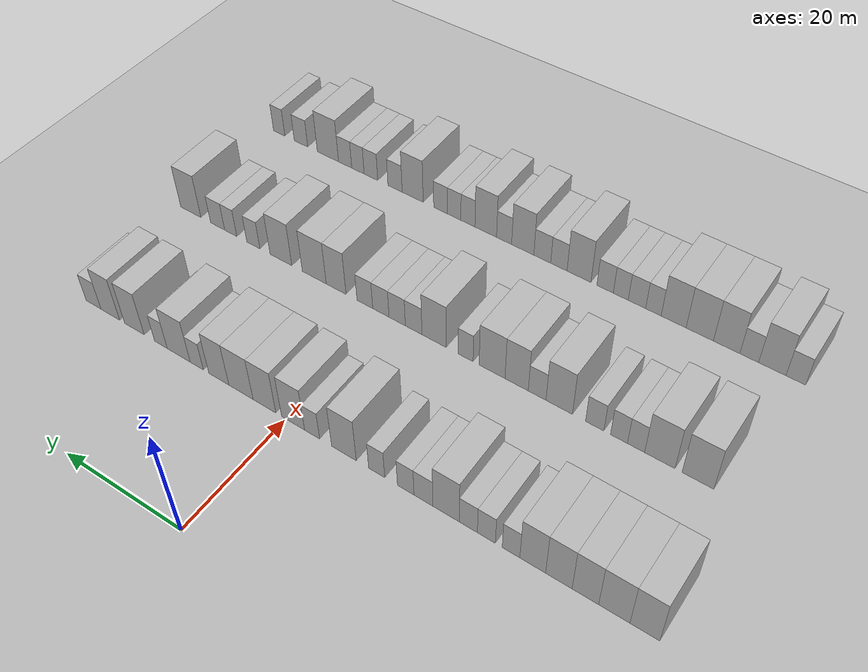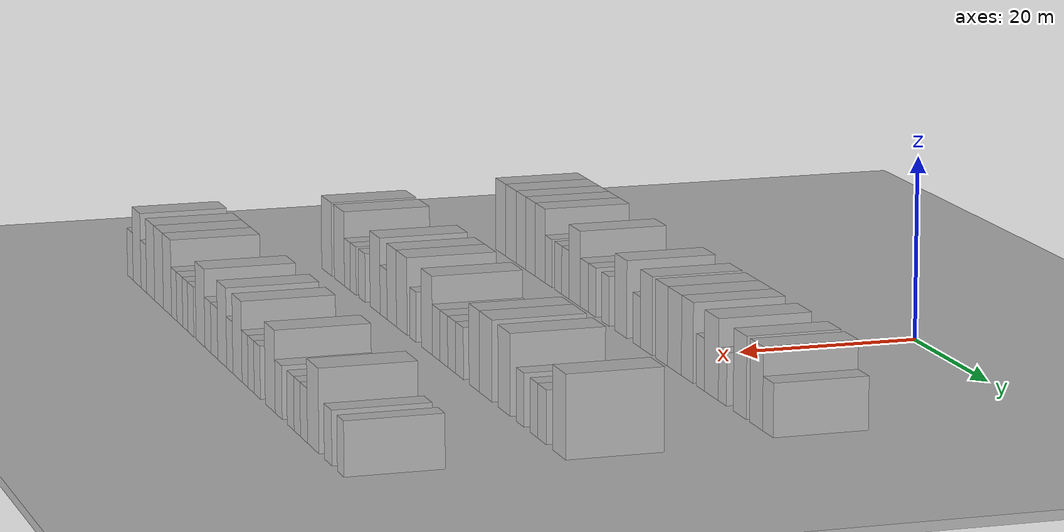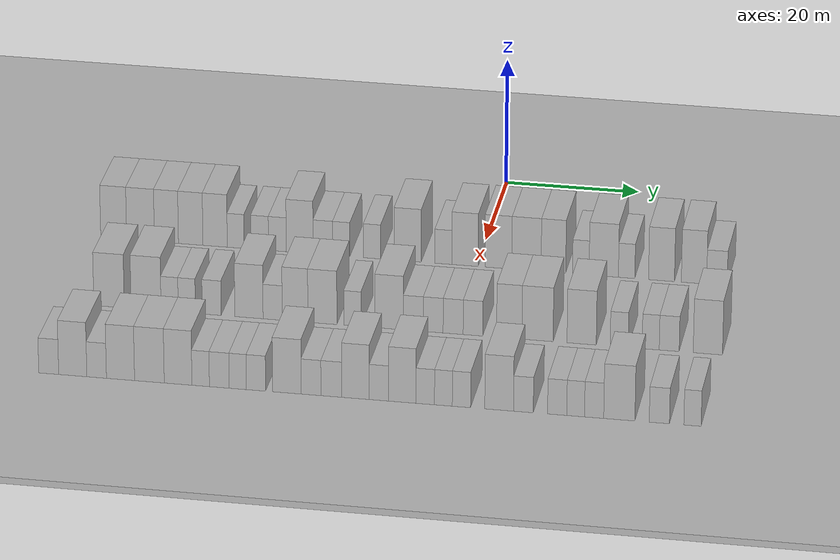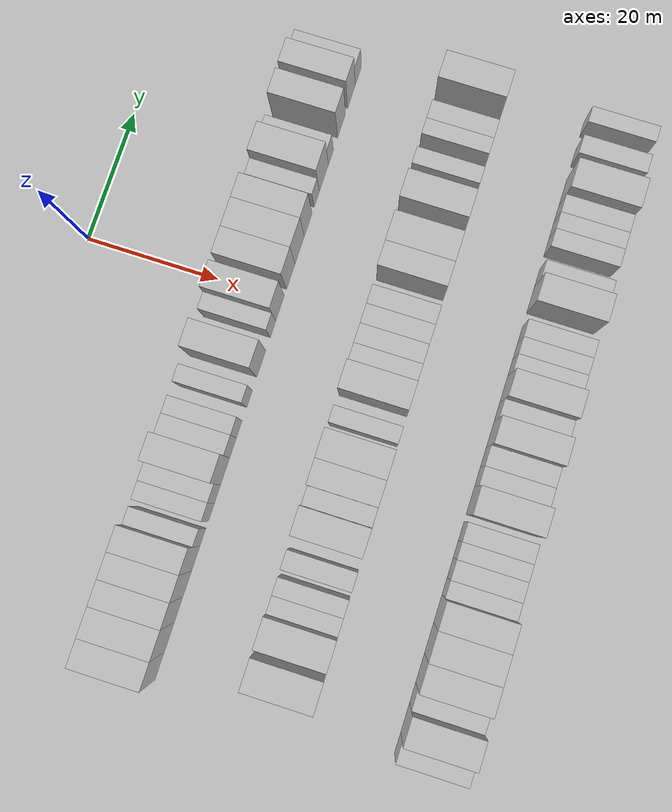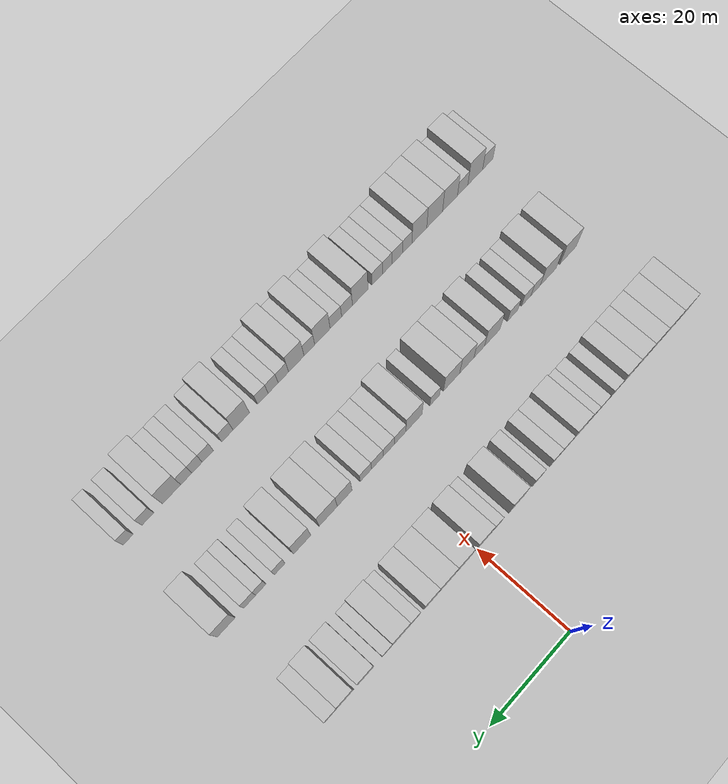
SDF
<sdf version="1.6">
 <world name="default">
  <include><name>ground_plane_1</name><uri>model://HANNAS_ground_plane</uri></include>
  <include>
   <name>ground_plane_2</name>
   <uri>model://HANNAS_ground_plane</uri>
   <pose>100 0 0  0 0 0</pose>
  </include>
  <model name="building_52">
   <static>1</static>
   <pose>25.0000 -53.8270 0 0.000000 0.000000 0.000000</pose>
   <link name="link">
    <pose>0 0 4.50 0 0 0</pose>
    <collision name="collision"><geometry><box><size>10.0000 3.8983 9.0000</size></box></geometry></collision>
    <visual name="visual">
     <cast_shadows>0</cast_shadows>
     <geometry><box><size>10.0000 3.8983 9.0000</size></box></geometry>
     <material>
      <script>
       <uri>model://HANNAS_wall/materials/scripts</uri>
       <uri>model://HANNAS_wall/materials/textures</uri>
       <name>vrc/HANNAS_wall</name>
      </script>
     </material>
    </visual>
   </link>
  </model>
  <model name="building_53">
   <static>1</static>
   <pose>25.0000 -49.7944 0 0.000000 0.000000 0.000000</pose>
   <link name="link">
    <pose>0 0 4.50 0 0 0</pose>
    <collision name="collision"><geometry><box><size>10.0000 4.1670 9.0000</size></box></geometry></collision>
    <visual name="visual">
     <cast_shadows>0</cast_shadows>
     <geometry><box><size>10.0000 4.1670 9.0000</size></box></geometry>
     <material>
      <script>
       <uri>model://HANNAS_wall/materials/scripts</uri>
       <uri>model://HANNAS_wall/materials/textures</uri>
       <name>vrc/HANNAS_wall</name>
      </script>
     </material>
    </visual>
   </link>
  </model>
  <model name="building_54">
   <static>1</static>
   <pose>25.0000 -45.9077 0 0.000000 0.000000 0.000000</pose>
   <link name="link">
    <pose>0 0 4.50 0 0 0</pose>
    <collision name="collision"><geometry><box><size>10.0000 3.6064 9.0000</size></box></geometry></collision>
    <visual name="visual">
     <cast_shadows>0</cast_shadows>
     <geometry><box><size>10.0000 3.6064 9.0000</size></box></geometry>
     <material>
      <script>
       <uri>model://HANNAS_wall/materials/scripts</uri>
       <uri>model://HANNAS_wall/materials/textures</uri>
       <name>vrc/HANNAS_wall</name>
      </script>
     </material>
    </visual>
   </link>
  </model>
  <model name="building_55">
   <static>1</static>
   <pose>25.0000 -42.2686 0 0.000000 0.000000 0.000000</pose>
   <link name="link">
    <pose>0 0 4.50 0 0 0</pose>
    <collision name="collision"><geometry><box><size>10.0000 3.6719 9.0000</size></box></geometry></collision>
    <visual name="visual">
     <cast_shadows>0</cast_shadows>
     <geometry><box><size>10.0000 3.6719 9.0000</size></box></geometry>
     <material>
      <script>
       <uri>model://HANNAS_wall/materials/scripts</uri>
       <uri>model://HANNAS_wall/materials/textures</uri>
       <name>vrc/HANNAS_wall</name>
      </script>
     </material>
    </visual>
   </link>
  </model>
  <model name="building_56">
   <static>1</static>
   <pose>25.0000 -38.6117 0 0.000000 0.000000 0.000000</pose>
   <link name="link">
    <pose>0 0 4.50 0 0 0</pose>
    <collision name="collision"><geometry><box><size>10.0000 3.6418 9.0000</size></box></geometry></collision>
    <visual name="visual">
     <cast_shadows>0</cast_shadows>
     <geometry><box><size>10.0000 3.6418 9.0000</size></box></geometry>
     <material>
      <script>
       <uri>model://HANNAS_wall/materials/scripts</uri>
       <uri>model://HANNAS_wall/materials/textures</uri>
       <name>vrc/HANNAS_wall</name>
      </script>
     </material>
    </visual>
   </link>
  </model>
  <model name="building_57">
   <static>1</static>
   <pose>25.0000 -35.5270 0 0.000000 0.000000 0.000000</pose>
   <link name="link">
    <pose>0 0 3.00 0 0 0</pose>
    <collision name="collision"><geometry><box><size>10.0000 2.5277 6.0000</size></box></geometry></collision>
    <visual name="visual">
     <cast_shadows>0</cast_shadows>
     <geometry><box><size>10.0000 2.5277 6.0000</size></box></geometry>
     <material>
      <script>
       <uri>model://HANNAS_wall/materials/scripts</uri>
       <uri>model://HANNAS_wall/materials/textures</uri>
       <name>vrc/HANNAS_wall</name>
      </script>
     </material>
    </visual>
   </link>
  </model>
  <model name="building_58">
   <static>1</static>
   <pose>25.0000 -31.9532 0 0.000000 0.000000 0.000000</pose>
   <link name="link">
    <pose>0 0 3.00 0 0 0</pose>
    <collision name="collision"><geometry><box><size>10.0000 2.6199 6.0000</size></box></geometry></collision>
    <visual name="visual">
     <cast_shadows>0</cast_shadows>
     <geometry><box><size>10.0000 2.6199 6.0000</size></box></geometry>
     <material>
      <script>
       <uri>model://HANNAS_wall/materials/scripts</uri>
       <uri>model://HANNAS_wall/materials/textures</uri>
       <name>vrc/HANNAS_wall</name>
      </script>
     </material>
    </visual>
   </link>
  </model>
  <model name="building_59">
   <static>1</static>
   <pose>25.0000 -29.3172 0 0.000000 0.000000 0.000000</pose>
   <link name="link">
    <pose>0 0 3.00 0 0 0</pose>
    <collision name="collision"><geometry><box><size>10.0000 2.6520 6.0000</size></box></geometry></collision>
    <visual name="visual">
     <cast_shadows>0</cast_shadows>
     <geometry><box><size>10.0000 2.6520 6.0000</size></box></geometry>
     <material>
      <script>
       <uri>model://HANNAS_wall/materials/scripts</uri>
       <uri>model://HANNAS_wall/materials/textures</uri>
       <name>vrc/HANNAS_wall</name>
      </script>
     </material>
    </visual>
   </link>
  </model>
  <model name="building_60">
   <static>1</static>
   <pose>25.0000 -25.9939 0 0.000000 0.000000 0.000000</pose>
   <link name="link">
    <pose>0 0 4.50 0 0 0</pose>
    <collision name="collision"><geometry><box><size>10.0000 3.9946 9.0000</size></box></geometry></collision>
    <visual name="visual">
     <cast_shadows>0</cast_shadows>
     <geometry><box><size>10.0000 3.9946 9.0000</size></box></geometry>
     <material>
      <script>
       <uri>model://HANNAS_wall/materials/scripts</uri>
       <uri>model://HANNAS_wall/materials/textures</uri>
       <name>vrc/HANNAS_wall</name>
      </script>
     </material>
    </visual>
   </link>
  </model>
  <model name="building_61">
   <static>1</static>
   <pose>25.0000 -22.5409 0 0.000000 0.000000 0.000000</pose>
   <link name="link">
    <pose>0 0 3.00 0 0 0</pose>
    <collision name="collision"><geometry><box><size>10.0000 2.9115 6.0000</size></box></geometry></collision>
    <visual name="visual">
     <cast_shadows>0</cast_shadows>
     <geometry><box><size>10.0000 2.9115 6.0000</size></box></geometry>
     <material>
      <script>
       <uri>model://HANNAS_wall/materials/scripts</uri>
       <uri>model://HANNAS_wall/materials/textures</uri>
       <name>vrc/HANNAS_wall</name>
      </script>
     </material>
    </visual>
   </link>
  </model>
  <model name="building_62">
   <static>1</static>
   <pose>25.0000 -19.7989 0 0.000000 0.000000 0.000000</pose>
   <link name="link">
    <pose>0 0 3.00 0 0 0</pose>
    <collision name="collision"><geometry><box><size>10.0000 2.5723 6.0000</size></box></geometry></collision>
    <visual name="visual">
     <cast_shadows>0</cast_shadows>
     <geometry><box><size>10.0000 2.5723 6.0000</size></box></geometry>
     <material>
      <script>
       <uri>model://HANNAS_wall/materials/scripts</uri>
       <uri>model://HANNAS_wall/materials/textures</uri>
       <name>vrc/HANNAS_wall</name>
      </script>
     </material>
    </visual>
   </link>
  </model>
  <model name="building_63">
   <static>1</static>
   <pose>25.0000 -15.2357 0 0.000000 0.000000 0.000000</pose>
   <link name="link">
    <pose>0 0 3.00 0 0 0</pose>
    <collision name="collision"><geometry><box><size>10.0000 2.5540 6.0000</size></box></geometry></collision>
    <visual name="visual">
     <cast_shadows>0</cast_shadows>
     <geometry><box><size>10.0000 2.5540 6.0000</size></box></geometry>
     <material>
      <script>
       <uri>model://HANNAS_wall/materials/scripts</uri>
       <uri>model://HANNAS_wall/materials/textures</uri>
       <name>vrc/HANNAS_wall</name>
      </script>
     </material>
    </visual>
   </link>
  </model>
  <model name="building_64">
   <static>1</static>
   <pose>25.0000 -9.9495 0 0.000000 0.000000 0.000000</pose>
   <link name="link">
    <pose>0 0 4.50 0 0 0</pose>
    <collision name="collision"><geometry><box><size>10.0000 4.0184 9.0000</size></box></geometry></collision>
    <visual name="visual">
     <cast_shadows>0</cast_shadows>
     <geometry><box><size>10.0000 4.0184 9.0000</size></box></geometry>
     <material>
      <script>
       <uri>model://HANNAS_wall/materials/scripts</uri>
       <uri>model://HANNAS_wall/materials/textures</uri>
       <name>vrc/HANNAS_wall</name>
      </script>
     </material>
    </visual>
   </link>
  </model>
  <model name="building_65">
   <static>1</static>
   <pose>25.0000 -4.6840 0 0.000000 0.000000 0.000000</pose>
   <link name="link">
    <pose>0 0 3.00 0 0 0</pose>
    <collision name="collision"><geometry><box><size>10.0000 2.5126 6.0000</size></box></geometry></collision>
    <visual name="visual">
     <cast_shadows>0</cast_shadows>
     <geometry><box><size>10.0000 2.5126 6.0000</size></box></geometry>
     <material>
      <script>
       <uri>model://HANNAS_wall/materials/scripts</uri>
       <uri>model://HANNAS_wall/materials/textures</uri>
       <name>vrc/HANNAS_wall</name>
      </script>
     </material>
    </visual>
   </link>
  </model>
  <model name="building_66">
   <static>1</static>
   <pose>25.0000 -1.4756 0 0.000000 0.000000 0.000000</pose>
   <link name="link">
    <pose>0 0 4.50 0 0 0</pose>
    <collision name="collision"><geometry><box><size>10.0000 3.9042 9.0000</size></box></geometry></collision>
    <visual name="visual">
     <cast_shadows>0</cast_shadows>
     <geometry><box><size>10.0000 3.9042 9.0000</size></box></geometry>
     <material>
      <script>
       <uri>model://HANNAS_wall/materials/scripts</uri>
       <uri>model://HANNAS_wall/materials/textures</uri>
       <name>vrc/HANNAS_wall</name>
      </script>
     </material>
    </visual>
   </link>
  </model>
  <model name="building_67">
   <static>1</static>
   <pose>25.0000 3.4564 0 0.000000 0.000000 0.000000</pose>
   <link name="link">
    <pose>0 0 4.50 0 0 0</pose>
    <collision name="collision"><geometry><box><size>10.0000 3.9598 9.0000</size></box></geometry></collision>
    <visual name="visual">
     <cast_shadows>0</cast_shadows>
     <geometry><box><size>10.0000 3.9598 9.0000</size></box></geometry>
     <material>
      <script>
       <uri>model://HANNAS_wall/materials/scripts</uri>
       <uri>model://HANNAS_wall/materials/textures</uri>
       <name>vrc/HANNAS_wall</name>
      </script>
     </material>
    </visual>
   </link>
  </model>
  <model name="building_68">
   <static>1</static>
   <pose>25.0000 7.5896 0 0.000000 0.000000 0.000000</pose>
   <link name="link">
    <pose>0 0 4.50 0 0 0</pose>
    <collision name="collision"><geometry><box><size>10.0000 4.3065 9.0000</size></box></geometry></collision>
    <visual name="visual">
     <cast_shadows>0</cast_shadows>
     <geometry><box><size>10.0000 4.3065 9.0000</size></box></geometry>
     <material>
      <script>
       <uri>model://HANNAS_wall/materials/scripts</uri>
       <uri>model://HANNAS_wall/materials/textures</uri>
       <name>vrc/HANNAS_wall</name>
      </script>
     </material>
    </visual>
   </link>
  </model>
  <model name="building_69">
   <static>1</static>
   <pose>25.0000 11.5523 0 0.000000 0.000000 0.000000</pose>
   <link name="link">
    <pose>0 0 4.50 0 0 0</pose>
    <collision name="collision"><geometry><box><size>10.0000 3.6191 9.0000</size></box></geometry></collision>
    <visual name="visual">
     <cast_shadows>0</cast_shadows>
     <geometry><box><size>10.0000 3.6191 9.0000</size></box></geometry>
     <material>
      <script>
       <uri>model://HANNAS_wall/materials/scripts</uri>
       <uri>model://HANNAS_wall/materials/textures</uri>
       <name>vrc/HANNAS_wall</name>
      </script>
     </material>
    </visual>
   </link>
  </model>
  <model name="building_70">
   <static>1</static>
   <pose>25.0000 15.5752 0 0.000000 0.000000 0.000000</pose>
   <link name="link">
    <pose>0 0 3.00 0 0 0</pose>
    <collision name="collision"><geometry><box><size>10.0000 2.4266 6.0000</size></box></geometry></collision>
    <visual name="visual">
     <cast_shadows>0</cast_shadows>
     <geometry><box><size>10.0000 2.4266 6.0000</size></box></geometry>
     <material>
      <script>
       <uri>model://HANNAS_wall/materials/scripts</uri>
       <uri>model://HANNAS_wall/materials/textures</uri>
       <name>vrc/HANNAS_wall</name>
      </script>
     </material>
    </visual>
   </link>
  </model>
  <model name="building_71">
   <static>1</static>
   <pose>25.0000 18.9392 0 0.000000 0.000000 0.000000</pose>
   <link name="link">
    <pose>0 0 4.50 0 0 0</pose>
    <collision name="collision"><geometry><box><size>10.0000 4.3015 9.0000</size></box></geometry></collision>
    <visual name="visual">
     <cast_shadows>0</cast_shadows>
     <geometry><box><size>10.0000 4.3015 9.0000</size></box></geometry>
     <material>
      <script>
       <uri>model://HANNAS_wall/materials/scripts</uri>
       <uri>model://HANNAS_wall/materials/textures</uri>
       <name>vrc/HANNAS_wall</name>
      </script>
     </material>
    </visual>
   </link>
  </model>
  <model name="building_72">
   <static>1</static>
   <pose>25.0000 22.2941 0 0.000000 0.000000 0.000000</pose>
   <link name="link">
    <pose>0 0 3.00 0 0 0</pose>
    <collision name="collision"><geometry><box><size>10.0000 2.4084 6.0000</size></box></geometry></collision>
    <visual name="visual">
     <cast_shadows>0</cast_shadows>
     <geometry><box><size>10.0000 2.4084 6.0000</size></box></geometry>
     <material>
      <script>
       <uri>model://HANNAS_wall/materials/scripts</uri>
       <uri>model://HANNAS_wall/materials/textures</uri>
       <name>vrc/HANNAS_wall</name>
      </script>
     </material>
    </visual>
   </link>
  </model>
  <model name="building_73">
   <static>1</static>
   <pose>25.0000 27.3943 0 0.000000 0.000000 0.000000</pose>
   <link name="link">
    <pose>0 0 4.50 0 0 0</pose>
    <collision name="collision"><geometry><box><size>10.0000 3.7920 9.0000</size></box></geometry></collision>
    <visual name="visual">
     <cast_shadows>0</cast_shadows>
     <geometry><box><size>10.0000 3.7920 9.0000</size></box></geometry>
     <material>
      <script>
       <uri>model://HANNAS_wall/materials/scripts</uri>
       <uri>model://HANNAS_wall/materials/textures</uri>
       <name>vrc/HANNAS_wall</name>
      </script>
     </material>
    </visual>
   </link>
  </model>
  <model name="building_74">
   <static>1</static>
   <pose>25.0000 32.1384 0 0.000000 0.000000 0.000000</pose>
   <link name="link">
    <pose>0 0 4.50 0 0 0</pose>
    <collision name="collision"><geometry><box><size>10.0000 3.6961 9.0000</size></box></geometry></collision>
    <visual name="visual">
     <cast_shadows>0</cast_shadows>
     <geometry><box><size>10.0000 3.6961 9.0000</size></box></geometry>
     <material>
      <script>
       <uri>model://HANNAS_wall/materials/scripts</uri>
       <uri>model://HANNAS_wall/materials/textures</uri>
       <name>vrc/HANNAS_wall</name>
      </script>
     </material>
    </visual>
   </link>
  </model>
  <model name="building_75">
   <static>1</static>
   <pose>25.0000 35.4859 0 0.000000 0.000000 0.000000</pose>
   <link name="link">
    <pose>0 0 3.00 0 0 0</pose>
    <collision name="collision"><geometry><box><size>10.0000 2.9990 6.0000</size></box></geometry></collision>
    <visual name="visual">
     <cast_shadows>0</cast_shadows>
     <geometry><box><size>10.0000 2.9990 6.0000</size></box></geometry>
     <material>
      <script>
       <uri>model://HANNAS_wall/materials/scripts</uri>
       <uri>model://HANNAS_wall/materials/textures</uri>
       <name>vrc/HANNAS_wall</name>
      </script>
     </material>
    </visual>
   </link>
  </model>
  <model name="building_176">
   <static>1</static>
   <pose>47.0000 -49.7025 0 0.000000 0.000000 0.000000</pose>
   <link name="link">
    <pose>0 0 4.50 0 0 0</pose>
    <collision name="collision"><geometry><box><size>10.0000 4.4777 9.0000</size></box></geometry></collision>
    <visual name="visual">
     <cast_shadows>0</cast_shadows>
     <geometry><box><size>10.0000 4.4777 9.0000</size></box></geometry>
     <material>
      <script>
       <uri>model://HANNAS_wall/materials/scripts</uri>
       <uri>model://HANNAS_wall/materials/textures</uri>
       <name>vrc/HANNAS_wall</name>
      </script>
     </material>
    </visual>
   </link>
  </model>
  <model name="building_177">
   <static>1</static>
   <pose>47.0000 -44.2681 0 0.000000 0.000000 0.000000</pose>
   <link name="link">
    <pose>0 0 4.50 0 0 0</pose>
    <collision name="collision"><geometry><box><size>10.0000 4.3910 9.0000</size></box></geometry></collision>
    <visual name="visual">
     <cast_shadows>0</cast_shadows>
     <geometry><box><size>10.0000 4.3910 9.0000</size></box></geometry>
     <material>
      <script>
       <uri>model://HANNAS_wall/materials/scripts</uri>
       <uri>model://HANNAS_wall/materials/textures</uri>
       <name>vrc/HANNAS_wall</name>
      </script>
     </material>
    </visual>
   </link>
  </model>
  <model name="building_178">
   <static>1</static>
   <pose>47.0000 -40.8148 0 0.000000 0.000000 0.000000</pose>
   <link name="link">
    <pose>0 0 3.00 0 0 0</pose>
    <collision name="collision"><geometry><box><size>10.0000 2.5156 6.0000</size></box></geometry></collision>
    <visual name="visual">
     <cast_shadows>0</cast_shadows>
     <geometry><box><size>10.0000 2.5156 6.0000</size></box></geometry>
     <material>
      <script>
       <uri>model://HANNAS_wall/materials/scripts</uri>
       <uri>model://HANNAS_wall/materials/textures</uri>
       <name>vrc/HANNAS_wall</name>
      </script>
     </material>
    </visual>
   </link>
  </model>
  <model name="building_179">
   <static>1</static>
   <pose>47.0000 -38.2989 0 0.000000 0.000000 0.000000</pose>
   <link name="link">
    <pose>0 0 3.00 0 0 0</pose>
    <collision name="collision"><geometry><box><size>10.0000 2.5162 6.0000</size></box></geometry></collision>
    <visual name="visual">
     <cast_shadows>0</cast_shadows>
     <geometry><box><size>10.0000 2.5162 6.0000</size></box></geometry>
     <material>
      <script>
       <uri>model://HANNAS_wall/materials/scripts</uri>
       <uri>model://HANNAS_wall/materials/textures</uri>
       <name>vrc/HANNAS_wall</name>
      </script>
     </material>
    </visual>
   </link>
  </model>
  <model name="building_180">
   <static>1</static>
   <pose>47.0000 -34.6572 0 0.000000 0.000000 0.000000</pose>
   <link name="link">
    <pose>0 0 3.00 0 0 0</pose>
    <collision name="collision"><geometry><box><size>10.0000 2.7671 6.0000</size></box></geometry></collision>
    <visual name="visual">
     <cast_shadows>0</cast_shadows>
     <geometry><box><size>10.0000 2.7671 6.0000</size></box></geometry>
     <material>
      <script>
       <uri>model://HANNAS_wall/materials/scripts</uri>
       <uri>model://HANNAS_wall/materials/textures</uri>
       <name>vrc/HANNAS_wall</name>
      </script>
     </material>
    </visual>
   </link>
  </model>
  <model name="building_181">
   <static>1</static>
   <pose>47.0000 -29.2161 0 0.000000 0.000000 0.000000</pose>
   <link name="link">
    <pose>0 0 4.50 0 0 0</pose>
    <collision name="collision"><geometry><box><size>10.0000 4.1152 9.0000</size></box></geometry></collision>
    <visual name="visual">
     <cast_shadows>0</cast_shadows>
     <geometry><box><size>10.0000 4.1152 9.0000</size></box></geometry>
     <material>
      <script>
       <uri>model://HANNAS_wall/materials/scripts</uri>
       <uri>model://HANNAS_wall/materials/textures</uri>
       <name>vrc/HANNAS_wall</name>
      </script>
     </material>
    </visual>
   </link>
  </model>
  <model name="building_182">
   <static>1</static>
   <pose>47.0000 -25.7636 0 0.000000 0.000000 0.000000</pose>
   <link name="link">
    <pose>0 0 3.00 0 0 0</pose>
    <collision name="collision"><geometry><box><size>10.0000 2.7898 6.0000</size></box></geometry></collision>
    <visual name="visual">
     <cast_shadows>0</cast_shadows>
     <geometry><box><size>10.0000 2.7898 6.0000</size></box></geometry>
     <material>
      <script>
       <uri>model://HANNAS_wall/materials/scripts</uri>
       <uri>model://HANNAS_wall/materials/textures</uri>
       <name>vrc/HANNAS_wall</name>
      </script>
     </material>
    </visual>
   </link>
  </model>
  <model name="building_183">
   <static>1</static>
   <pose>47.0000 -22.5018 0 0.000000 0.000000 0.000000</pose>
   <link name="link">
    <pose>0 0 4.50 0 0 0</pose>
    <collision name="collision"><geometry><box><size>10.0000 3.7336 9.0000</size></box></geometry></collision>
    <visual name="visual">
     <cast_shadows>0</cast_shadows>
     <geometry><box><size>10.0000 3.7336 9.0000</size></box></geometry>
     <material>
      <script>
       <uri>model://HANNAS_wall/materials/scripts</uri>
       <uri>model://HANNAS_wall/materials/textures</uri>
       <name>vrc/HANNAS_wall</name>
      </script>
     </material>
    </visual>
   </link>
  </model>
  <model name="building_184">
   <static>1</static>
   <pose>47.0000 -18.5233 0 0.000000 0.000000 0.000000</pose>
   <link name="link">
    <pose>0 0 4.50 0 0 0</pose>
    <collision name="collision"><geometry><box><size>10.0000 4.2235 9.0000</size></box></geometry></collision>
    <visual name="visual">
     <cast_shadows>0</cast_shadows>
     <geometry><box><size>10.0000 4.2235 9.0000</size></box></geometry>
     <material>
      <script>
       <uri>model://HANNAS_wall/materials/scripts</uri>
       <uri>model://HANNAS_wall/materials/textures</uri>
       <name>vrc/HANNAS_wall</name>
      </script>
     </material>
    </visual>
   </link>
  </model>
  <model name="building_185">
   <static>1</static>
   <pose>47.0000 -14.1688 0 0.000000 0.000000 0.000000</pose>
   <link name="link">
    <pose>0 0 3.00 0 0 0</pose>
    <collision name="collision"><geometry><box><size>10.0000 2.4854 6.0000</size></box></geometry></collision>
    <visual name="visual">
     <cast_shadows>0</cast_shadows>
     <geometry><box><size>10.0000 2.4854 6.0000</size></box></geometry>
     <material>
      <script>
       <uri>model://HANNAS_wall/materials/scripts</uri>
       <uri>model://HANNAS_wall/materials/textures</uri>
       <name>vrc/HANNAS_wall</name>
      </script>
     </material>
    </visual>
   </link>
  </model>
  <model name="building_186">
   <static>1</static>
   <pose>47.0000 -8.8593 0 0.000000 0.000000 0.000000</pose>
   <link name="link">
    <pose>0 0 4.50 0 0 0</pose>
    <collision name="collision"><geometry><box><size>10.0000 4.1335 9.0000</size></box></geometry></collision>
    <visual name="visual">
     <cast_shadows>0</cast_shadows>
     <geometry><box><size>10.0000 4.1335 9.0000</size></box></geometry>
     <material>
      <script>
       <uri>model://HANNAS_wall/materials/scripts</uri>
       <uri>model://HANNAS_wall/materials/textures</uri>
       <name>vrc/HANNAS_wall</name>
      </script>
     </material>
    </visual>
   </link>
  </model>
  <model name="building_187">
   <static>1</static>
   <pose>47.0000 -5.3504 0 0.000000 0.000000 0.000000</pose>
   <link name="link">
    <pose>0 0 3.00 0 0 0</pose>
    <collision name="collision"><geometry><box><size>10.0000 2.8844 6.0000</size></box></geometry></collision>
    <visual name="visual">
     <cast_shadows>0</cast_shadows>
     <geometry><box><size>10.0000 2.8844 6.0000</size></box></geometry>
     <material>
      <script>
       <uri>model://HANNAS_wall/materials/scripts</uri>
       <uri>model://HANNAS_wall/materials/textures</uri>
       <name>vrc/HANNAS_wall</name>
      </script>
     </material>
    </visual>
   </link>
  </model>
  <model name="building_188">
   <static>1</static>
   <pose>47.0000 -2.4715 0 0.000000 0.000000 0.000000</pose>
   <link name="link">
    <pose>0 0 3.00 0 0 0</pose>
    <collision name="collision"><geometry><box><size>10.0000 2.8732 6.0000</size></box></geometry></collision>
    <visual name="visual">
     <cast_shadows>0</cast_shadows>
     <geometry><box><size>10.0000 2.8732 6.0000</size></box></geometry>
     <material>
      <script>
       <uri>model://HANNAS_wall/materials/scripts</uri>
       <uri>model://HANNAS_wall/materials/textures</uri>
       <name>vrc/HANNAS_wall</name>
      </script>
     </material>
    </visual>
   </link>
  </model>
  <model name="building_189">
   <static>1</static>
   <pose>47.0000 0.4097 0 0.000000 0.000000 0.000000</pose>
   <link name="link">
    <pose>0 0 3.00 0 0 0</pose>
    <collision name="collision"><geometry><box><size>10.0000 2.8893 6.0000</size></box></geometry></collision>
    <visual name="visual">
     <cast_shadows>0</cast_shadows>
     <geometry><box><size>10.0000 2.8893 6.0000</size></box></geometry>
     <material>
      <script>
       <uri>model://HANNAS_wall/materials/scripts</uri>
       <uri>model://HANNAS_wall/materials/textures</uri>
       <name>vrc/HANNAS_wall</name>
      </script>
     </material>
    </visual>
   </link>
  </model>
  <model name="building_190">
   <static>1</static>
   <pose>47.0000 3.2677 0 0.000000 0.000000 0.000000</pose>
   <link name="link">
    <pose>0 0 3.00 0 0 0</pose>
    <collision name="collision"><geometry><box><size>10.0000 2.8268 6.0000</size></box></geometry></collision>
    <visual name="visual">
     <cast_shadows>0</cast_shadows>
     <geometry><box><size>10.0000 2.8268 6.0000</size></box></geometry>
     <material>
      <script>
       <uri>model://HANNAS_wall/materials/scripts</uri>
       <uri>model://HANNAS_wall/materials/textures</uri>
       <name>vrc/HANNAS_wall</name>
      </script>
     </material>
    </visual>
   </link>
  </model>
  <model name="building_191">
   <static>1</static>
   <pose>47.0000 8.5052 0 0.000000 0.000000 0.000000</pose>
   <link name="link">
    <pose>0 0 4.50 0 0 0</pose>
    <collision name="collision"><geometry><box><size>10.0000 3.6481 9.0000</size></box></geometry></collision>
    <visual name="visual">
     <cast_shadows>0</cast_shadows>
     <geometry><box><size>10.0000 3.6481 9.0000</size></box></geometry>
     <material>
      <script>
       <uri>model://HANNAS_wall/materials/scripts</uri>
       <uri>model://HANNAS_wall/materials/textures</uri>
       <name>vrc/HANNAS_wall</name>
      </script>
     </material>
    </visual>
   </link>
  </model>
  <model name="building_192">
   <static>1</static>
   <pose>47.0000 12.5658 0 0.000000 0.000000 0.000000</pose>
   <link name="link">
    <pose>0 0 4.50 0 0 0</pose>
    <collision name="collision"><geometry><box><size>10.0000 4.4731 9.0000</size></box></geometry></collision>
    <visual name="visual">
     <cast_shadows>0</cast_shadows>
     <geometry><box><size>10.0000 4.4731 9.0000</size></box></geometry>
     <material>
      <script>
       <uri>model://HANNAS_wall/materials/scripts</uri>
       <uri>model://HANNAS_wall/materials/textures</uri>
       <name>vrc/HANNAS_wall</name>
      </script>
     </material>
    </visual>
   </link>
  </model>
  <model name="building_193">
   <static>1</static>
   <pose>47.0000 18.8960 0 0.000000 0.000000 0.000000</pose>
   <link name="link">
    <pose>0 0 4.50 0 0 0</pose>
    <collision name="collision"><geometry><box><size>10.0000 4.1874 9.0000</size></box></geometry></collision>
    <visual name="visual">
     <cast_shadows>0</cast_shadows>
     <geometry><box><size>10.0000 4.1874 9.0000</size></box></geometry>
     <material>
      <script>
       <uri>model://HANNAS_wall/materials/scripts</uri>
       <uri>model://HANNAS_wall/materials/textures</uri>
       <name>vrc/HANNAS_wall</name>
      </script>
     </material>
    </visual>
   </link>
  </model>
  <model name="building_194">
   <static>1</static>
   <pose>47.0000 24.2734 0 0.000000 0.000000 0.000000</pose>
   <link name="link">
    <pose>0 0 3.00 0 0 0</pose>
    <collision name="collision"><geometry><box><size>10.0000 2.5675 6.0000</size></box></geometry></collision>
    <visual name="visual">
     <cast_shadows>0</cast_shadows>
     <geometry><box><size>10.0000 2.5675 6.0000</size></box></geometry>
     <material>
      <script>
       <uri>model://HANNAS_wall/materials/scripts</uri>
       <uri>model://HANNAS_wall/materials/textures</uri>
       <name>vrc/HANNAS_wall</name>
      </script>
     </material>
    </visual>
   </link>
  </model>
  <model name="building_195">
   <static>1</static>
   <pose>47.0000 28.7761 0 0.000000 0.000000 0.000000</pose>
   <link name="link">
    <pose>0 0 3.00 0 0 0</pose>
    <collision name="collision"><geometry><box><size>10.0000 2.4379 6.0000</size></box></geometry></collision>
    <visual name="visual">
     <cast_shadows>0</cast_shadows>
     <geometry><box><size>10.0000 2.4379 6.0000</size></box></geometry>
     <material>
      <script>
       <uri>model://HANNAS_wall/materials/scripts</uri>
       <uri>model://HANNAS_wall/materials/textures</uri>
       <name>vrc/HANNAS_wall</name>
      </script>
     </material>
    </visual>
   </link>
  </model>
  <model name="building_196">
   <static>1</static>
   <pose>47.0000 31.4204 0 0.000000 0.000000 0.000000</pose>
   <link name="link">
    <pose>0 0 3.00 0 0 0</pose>
    <collision name="collision"><geometry><box><size>10.0000 2.8508 6.0000</size></box></geometry></collision>
    <visual name="visual">
     <cast_shadows>0</cast_shadows>
     <geometry><box><size>10.0000 2.8508 6.0000</size></box></geometry>
     <material>
      <script>
       <uri>model://HANNAS_wall/materials/scripts</uri>
       <uri>model://HANNAS_wall/materials/textures</uri>
       <name>vrc/HANNAS_wall</name>
      </script>
     </material>
    </visual>
   </link>
  </model>
  <model name="building_197">
   <static>1</static>
   <pose>47.0000 36.9299 0 0.000000 0.000000 0.000000</pose>
   <link name="link">
    <pose>0 0 4.50 0 0 0</pose>
    <collision name="collision"><geometry><box><size>10.0000 4.1681 9.0000</size></box></geometry></collision>
    <visual name="visual">
     <cast_shadows>0</cast_shadows>
     <geometry><box><size>10.0000 4.1681 9.0000</size></box></geometry>
     <material>
      <script>
       <uri>model://HANNAS_wall/materials/scripts</uri>
       <uri>model://HANNAS_wall/materials/textures</uri>
       <name>vrc/HANNAS_wall</name>
      </script>
     </material>
    </visual>
   </link>
  </model>
  <model name="building_290">
   <static>1</static>
   <pose>69.0000 -53.5535 0 0.000000 0.000000 0.000000</pose>
   <link name="link">
    <pose>0 0 3.00 0 0 0</pose>
    <collision name="collision"><geometry><box><size>10.0000 2.8653 6.0000</size></box></geometry></collision>
    <visual name="visual">
     <cast_shadows>0</cast_shadows>
     <geometry><box><size>10.0000 2.8653 6.0000</size></box></geometry>
     <material>
      <script>
       <uri>model://HANNAS_wall/materials/scripts</uri>
       <uri>model://HANNAS_wall/materials/textures</uri>
       <name>vrc/HANNAS_wall</name>
      </script>
     </material>
    </visual>
   </link>
  </model>
  <model name="building_291">
   <static>1</static>
   <pose>69.0000 -50.0944 0 0.000000 0.000000 0.000000</pose>
   <link name="link">
    <pose>0 0 4.50 0 0 0</pose>
    <collision name="collision"><geometry><box><size>10.0000 4.0529 9.0000</size></box></geometry></collision>
    <visual name="visual">
     <cast_shadows>0</cast_shadows>
     <geometry><box><size>10.0000 4.0529 9.0000</size></box></geometry>
     <material>
      <script>
       <uri>model://HANNAS_wall/materials/scripts</uri>
       <uri>model://HANNAS_wall/materials/textures</uri>
       <name>vrc/HANNAS_wall</name>
      </script>
     </material>
    </visual>
   </link>
  </model>
  <model name="building_292">
   <static>1</static>
   <pose>69.0000 -46.6629 0 0.000000 0.000000 0.000000</pose>
   <link name="link">
    <pose>0 0 3.00 0 0 0</pose>
    <collision name="collision"><geometry><box><size>10.0000 2.8102 6.0000</size></box></geometry></collision>
    <visual name="visual">
     <cast_shadows>0</cast_shadows>
     <geometry><box><size>10.0000 2.8102 6.0000</size></box></geometry>
     <material>
      <script>
       <uri>model://HANNAS_wall/materials/scripts</uri>
       <uri>model://HANNAS_wall/materials/textures</uri>
       <name>vrc/HANNAS_wall</name>
      </script>
     </material>
    </visual>
   </link>
  </model>
  <model name="building_293">
   <static>1</static>
   <pose>69.0000 -43.2406 0 0.000000 0.000000 0.000000</pose>
   <link name="link">
    <pose>0 0 4.50 0 0 0</pose>
    <collision name="collision"><geometry><box><size>10.0000 4.0343 9.0000</size></box></geometry></collision>
    <visual name="visual">
     <cast_shadows>0</cast_shadows>
     <geometry><box><size>10.0000 4.0343 9.0000</size></box></geometry>
     <material>
      <script>
       <uri>model://HANNAS_wall/materials/scripts</uri>
       <uri>model://HANNAS_wall/materials/textures</uri>
       <name>vrc/HANNAS_wall</name>
      </script>
     </material>
    </visual>
   </link>
  </model>
  <model name="building_294">
   <static>1</static>
   <pose>69.0000 -39.0983 0 0.000000 0.000000 0.000000</pose>
   <link name="link">
    <pose>0 0 4.50 0 0 0</pose>
    <collision name="collision"><geometry><box><size>10.0000 4.2503 9.0000</size></box></geometry></collision>
    <visual name="visual">
     <cast_shadows>0</cast_shadows>
     <geometry><box><size>10.0000 4.2503 9.0000</size></box></geometry>
     <material>
      <script>
       <uri>model://HANNAS_wall/materials/scripts</uri>
       <uri>model://HANNAS_wall/materials/textures</uri>
       <name>vrc/HANNAS_wall</name>
      </script>
     </material>
    </visual>
   </link>
  </model>
  <model name="building_295">
   <static>1</static>
   <pose>69.0000 -34.9941 0 0.000000 0.000000 0.000000</pose>
   <link name="link">
    <pose>0 0 4.50 0 0 0</pose>
    <collision name="collision"><geometry><box><size>10.0000 3.9580 9.0000</size></box></geometry></collision>
    <visual name="visual">
     <cast_shadows>0</cast_shadows>
     <geometry><box><size>10.0000 3.9580 9.0000</size></box></geometry>
     <material>
      <script>
       <uri>model://HANNAS_wall/materials/scripts</uri>
       <uri>model://HANNAS_wall/materials/textures</uri>
       <name>vrc/HANNAS_wall</name>
      </script>
     </material>
    </visual>
   </link>
  </model>
  <model name="building_296">
   <static>1</static>
   <pose>69.0000 -31.7685 0 0.000000 0.000000 0.000000</pose>
   <link name="link">
    <pose>0 0 3.00 0 0 0</pose>
    <collision name="collision"><geometry><box><size>10.0000 2.4933 6.0000</size></box></geometry></collision>
    <visual name="visual">
     <cast_shadows>0</cast_shadows>
     <geometry><box><size>10.0000 2.4933 6.0000</size></box></geometry>
     <material>
      <script>
       <uri>model://HANNAS_wall/materials/scripts</uri>
       <uri>model://HANNAS_wall/materials/textures</uri>
       <name>vrc/HANNAS_wall</name>
      </script>
     </material>
    </visual>
   </link>
  </model>
  <model name="building_297">
   <static>1</static>
   <pose>69.0000 -29.1076 0 0.000000 0.000000 0.000000</pose>
   <link name="link">
    <pose>0 0 3.00 0 0 0</pose>
    <collision name="collision"><geometry><box><size>10.0000 2.8285 6.0000</size></box></geometry></collision>
    <visual name="visual">
     <cast_shadows>0</cast_shadows>
     <geometry><box><size>10.0000 2.8285 6.0000</size></box></geometry>
     <material>
      <script>
       <uri>model://HANNAS_wall/materials/scripts</uri>
       <uri>model://HANNAS_wall/materials/textures</uri>
       <name>vrc/HANNAS_wall</name>
      </script>
     </material>
    </visual>
   </link>
  </model>
  <model name="building_298">
   <static>1</static>
   <pose>69.0000 -26.4681 0 0.000000 0.000000 0.000000</pose>
   <link name="link">
    <pose>0 0 3.00 0 0 0</pose>
    <collision name="collision"><geometry><box><size>10.0000 2.4505 6.0000</size></box></geometry></collision>
    <visual name="visual">
     <cast_shadows>0</cast_shadows>
     <geometry><box><size>10.0000 2.4505 6.0000</size></box></geometry>
     <material>
      <script>
       <uri>model://HANNAS_wall/materials/scripts</uri>
       <uri>model://HANNAS_wall/materials/textures</uri>
       <name>vrc/HANNAS_wall</name>
      </script>
     </material>
    </visual>
   </link>
  </model>
  <model name="building_299">
   <static>1</static>
   <pose>69.0000 -23.8754 0 0.000000 0.000000 0.000000</pose>
   <link name="link">
    <pose>0 0 3.00 0 0 0</pose>
    <collision name="collision"><geometry><box><size>10.0000 2.7350 6.0000</size></box></geometry></collision>
    <visual name="visual">
     <cast_shadows>0</cast_shadows>
     <geometry><box><size>10.0000 2.7350 6.0000</size></box></geometry>
     <material>
      <script>
       <uri>model://HANNAS_wall/materials/scripts</uri>
       <uri>model://HANNAS_wall/materials/textures</uri>
       <name>vrc/HANNAS_wall</name>
      </script>
     </material>
    </visual>
   </link>
  </model>
  <model name="building_300">
   <static>1</static>
   <pose>69.0000 -19.4808 0 0.000000 0.000000 0.000000</pose>
   <link name="link">
    <pose>0 0 4.50 0 0 0</pose>
    <collision name="collision"><geometry><box><size>10.0000 4.0542 9.0000</size></box></geometry></collision>
    <visual name="visual">
     <cast_shadows>0</cast_shadows>
     <geometry><box><size>10.0000 4.0542 9.0000</size></box></geometry>
     <material>
      <script>
       <uri>model://HANNAS_wall/materials/scripts</uri>
       <uri>model://HANNAS_wall/materials/textures</uri>
       <name>vrc/HANNAS_wall</name>
      </script>
     </material>
    </visual>
   </link>
  </model>
  <model name="building_301">
   <static>1</static>
   <pose>69.0000 -16.0509 0 0.000000 0.000000 0.000000</pose>
   <link name="link">
    <pose>0 0 3.00 0 0 0</pose>
    <collision name="collision"><geometry><box><size>10.0000 2.8055 6.0000</size></box></geometry></collision>
    <visual name="visual">
     <cast_shadows>0</cast_shadows>
     <geometry><box><size>10.0000 2.8055 6.0000</size></box></geometry>
     <material>
      <script>
       <uri>model://HANNAS_wall/materials/scripts</uri>
       <uri>model://HANNAS_wall/materials/textures</uri>
       <name>vrc/HANNAS_wall</name>
      </script>
     </material>
    </visual>
   </link>
  </model>
  <model name="building_302">
   <static>1</static>
   <pose>69.0000 -13.1821 0 0.000000 0.000000 0.000000</pose>
   <link name="link">
    <pose>0 0 3.00 0 0 0</pose>
    <collision name="collision"><geometry><box><size>10.0000 2.9321 6.0000</size></box></geometry></collision>
    <visual name="visual">
     <cast_shadows>0</cast_shadows>
     <geometry><box><size>10.0000 2.9321 6.0000</size></box></geometry>
     <material>
      <script>
       <uri>model://HANNAS_wall/materials/scripts</uri>
       <uri>model://HANNAS_wall/materials/textures</uri>
       <name>vrc/HANNAS_wall</name>
      </script>
     </material>
    </visual>
   </link>
  </model>
  <model name="building_303">
   <static>1</static>
   <pose>69.0000 -9.7515 0 0.000000 0.000000 0.000000</pose>
   <link name="link">
    <pose>0 0 4.50 0 0 0</pose>
    <collision name="collision"><geometry><box><size>10.0000 3.9290 9.0000</size></box></geometry></collision>
    <visual name="visual">
     <cast_shadows>0</cast_shadows>
     <geometry><box><size>10.0000 3.9290 9.0000</size></box></geometry>
     <material>
      <script>
       <uri>model://HANNAS_wall/materials/scripts</uri>
       <uri>model://HANNAS_wall/materials/textures</uri>
       <name>vrc/HANNAS_wall</name>
      </script>
     </material>
    </visual>
   </link>
  </model>
  <model name="building_304">
   <static>1</static>
   <pose>69.0000 -6.4376 0 0.000000 0.000000 0.000000</pose>
   <link name="link">
    <pose>0 0 3.00 0 0 0</pose>
    <collision name="collision"><geometry><box><size>10.0000 2.6988 6.0000</size></box></geometry></collision>
    <visual name="visual">
     <cast_shadows>0</cast_shadows>
     <geometry><box><size>10.0000 2.6988 6.0000</size></box></geometry>
     <material>
      <script>
       <uri>model://HANNAS_wall/materials/scripts</uri>
       <uri>model://HANNAS_wall/materials/textures</uri>
       <name>vrc/HANNAS_wall</name>
      </script>
     </material>
    </visual>
   </link>
  </model>
  <model name="building_305">
   <static>1</static>
   <pose>69.0000 -3.1322 0 0.000000 0.000000 0.000000</pose>
   <link name="link">
    <pose>0 0 4.50 0 0 0</pose>
    <collision name="collision"><geometry><box><size>10.0000 3.9121 9.0000</size></box></geometry></collision>
    <visual name="visual">
     <cast_shadows>0</cast_shadows>
     <geometry><box><size>10.0000 3.9121 9.0000</size></box></geometry>
     <material>
      <script>
       <uri>model://HANNAS_wall/materials/scripts</uri>
       <uri>model://HANNAS_wall/materials/textures</uri>
       <name>vrc/HANNAS_wall</name>
      </script>
     </material>
    </visual>
   </link>
  </model>
  <model name="building_306">
   <static>1</static>
   <pose>69.0000 0.1219 0 0.000000 0.000000 0.000000</pose>
   <link name="link">
    <pose>0 0 3.00 0 0 0</pose>
    <collision name="collision"><geometry><box><size>10.0000 2.5961 6.0000</size></box></geometry></collision>
    <visual name="visual">
     <cast_shadows>0</cast_shadows>
     <geometry><box><size>10.0000 2.5961 6.0000</size></box></geometry>
     <material>
      <script>
       <uri>model://HANNAS_wall/materials/scripts</uri>
       <uri>model://HANNAS_wall/materials/textures</uri>
       <name>vrc/HANNAS_wall</name>
      </script>
     </material>
    </visual>
   </link>
  </model>
  <model name="building_307">
   <static>1</static>
   <pose>69.0000 2.6722 0 0.000000 0.000000 0.000000</pose>
   <link name="link">
    <pose>0 0 3.00 0 0 0</pose>
    <collision name="collision"><geometry><box><size>10.0000 2.5046 6.0000</size></box></geometry></collision>
    <visual name="visual">
     <cast_shadows>0</cast_shadows>
     <geometry><box><size>10.0000 2.5046 6.0000</size></box></geometry>
     <material>
      <script>
       <uri>model://HANNAS_wall/materials/scripts</uri>
       <uri>model://HANNAS_wall/materials/textures</uri>
       <name>vrc/HANNAS_wall</name>
      </script>
     </material>
    </visual>
   </link>
  </model>
  <model name="building_308">
   <static>1</static>
   <pose>69.0000 5.2138 0 0.000000 0.000000 0.000000</pose>
   <link name="link">
    <pose>0 0 3.00 0 0 0</pose>
    <collision name="collision"><geometry><box><size>10.0000 2.5786 6.0000</size></box></geometry></collision>
    <visual name="visual">
     <cast_shadows>0</cast_shadows>
     <geometry><box><size>10.0000 2.5786 6.0000</size></box></geometry>
     <material>
      <script>
       <uri>model://HANNAS_wall/materials/scripts</uri>
       <uri>model://HANNAS_wall/materials/textures</uri>
       <name>vrc/HANNAS_wall</name>
      </script>
     </material>
    </visual>
   </link>
  </model>
  <model name="building_309">
   <static>1</static>
   <pose>69.0000 10.5247 0 0.000000 0.000000 0.000000</pose>
   <link name="link">
    <pose>0 0 4.50 0 0 0</pose>
    <collision name="collision"><geometry><box><size>10.0000 4.0430 9.0000</size></box></geometry></collision>
    <visual name="visual">
     <cast_shadows>0</cast_shadows>
     <geometry><box><size>10.0000 4.0430 9.0000</size></box></geometry>
     <material>
      <script>
       <uri>model://HANNAS_wall/materials/scripts</uri>
       <uri>model://HANNAS_wall/materials/textures</uri>
       <name>vrc/HANNAS_wall</name>
      </script>
     </material>
    </visual>
   </link>
  </model>
  <model name="building_310">
   <static>1</static>
   <pose>69.0000 13.9326 0 0.000000 0.000000 0.000000</pose>
   <link name="link">
    <pose>0 0 3.00 0 0 0</pose>
    <collision name="collision"><geometry><box><size>10.0000 2.7727 6.0000</size></box></geometry></collision>
    <visual name="visual">
     <cast_shadows>0</cast_shadows>
     <geometry><box><size>10.0000 2.7727 6.0000</size></box></geometry>
     <material>
      <script>
       <uri>model://HANNAS_wall/materials/scripts</uri>
       <uri>model://HANNAS_wall/materials/textures</uri>
       <name>vrc/HANNAS_wall</name>
      </script>
     </material>
    </visual>
   </link>
  </model>
  <model name="building_311">
   <static>1</static>
   <pose>69.0000 18.6673 0 0.000000 0.000000 0.000000</pose>
   <link name="link">
    <pose>0 0 3.00 0 0 0</pose>
    <collision name="collision"><geometry><box><size>10.0000 2.6969 6.0000</size></box></geometry></collision>
    <visual name="visual">
     <cast_shadows>0</cast_shadows>
     <geometry><box><size>10.0000 2.6969 6.0000</size></box></geometry>
     <material>
      <script>
       <uri>model://HANNAS_wall/materials/scripts</uri>
       <uri>model://HANNAS_wall/materials/textures</uri>
       <name>vrc/HANNAS_wall</name>
      </script>
     </material>
    </visual>
   </link>
  </model>
  <model name="building_312">
   <static>1</static>
   <pose>69.0000 21.2586 0 0.000000 0.000000 0.000000</pose>
   <link name="link">
    <pose>0 0 3.00 0 0 0</pose>
    <collision name="collision"><geometry><box><size>10.0000 2.4857 6.0000</size></box></geometry></collision>
    <visual name="visual">
     <cast_shadows>0</cast_shadows>
     <geometry><box><size>10.0000 2.4857 6.0000</size></box></geometry>
     <material>
      <script>
       <uri>model://HANNAS_wall/materials/scripts</uri>
       <uri>model://HANNAS_wall/materials/textures</uri>
       <name>vrc/HANNAS_wall</name>
      </script>
     </material>
    </visual>
   </link>
  </model>
  <model name="building_313">
   <static>1</static>
   <pose>69.0000 23.8419 0 0.000000 0.000000 0.000000</pose>
   <link name="link">
    <pose>0 0 3.00 0 0 0</pose>
    <collision name="collision"><geometry><box><size>10.0000 2.6809 6.0000</size></box></geometry></collision>
    <visual name="visual">
     <cast_shadows>0</cast_shadows>
     <geometry><box><size>10.0000 2.6809 6.0000</size></box></geometry>
     <material>
      <script>
       <uri>model://HANNAS_wall/materials/scripts</uri>
       <uri>model://HANNAS_wall/materials/textures</uri>
       <name>vrc/HANNAS_wall</name>
      </script>
     </material>
    </visual>
   </link>
  </model>
  <model name="building_314">
   <static>1</static>
   <pose>69.0000 27.3606 0 0.000000 0.000000 0.000000</pose>
   <link name="link">
    <pose>0 0 4.50 0 0 0</pose>
    <collision name="collision"><geometry><box><size>10.0000 4.3564 9.0000</size></box></geometry></collision>
    <visual name="visual">
     <cast_shadows>0</cast_shadows>
     <geometry><box><size>10.0000 4.3564 9.0000</size></box></geometry>
     <material>
      <script>
       <uri>model://HANNAS_wall/materials/scripts</uri>
       <uri>model://HANNAS_wall/materials/textures</uri>
       <name>vrc/HANNAS_wall</name>
      </script>
     </material>
    </visual>
   </link>
  </model>
  <model name="building_315">
   <static>1</static>
   <pose>69.0000 32.9502 0 0.000000 0.000000 0.000000</pose>
   <link name="link">
    <pose>0 0 3.00 0 0 0</pose>
    <collision name="collision"><geometry><box><size>10.0000 2.8228 6.0000</size></box></geometry></collision>
    <visual name="visual">
     <cast_shadows>0</cast_shadows>
     <geometry><box><size>10.0000 2.8228 6.0000</size></box></geometry>
     <material>
      <script>
       <uri>model://HANNAS_wall/materials/scripts</uri>
       <uri>model://HANNAS_wall/materials/textures</uri>
       <name>vrc/HANNAS_wall</name>
      </script>
     </material>
    </visual>
   </link>
  </model>
  <model name="building_316">
   <static>1</static>
   <pose>69.0000 37.5647 0 0.000000 0.000000 0.000000</pose>
   <link name="link">
    <pose>0 0 3.00 0 0 0</pose>
    <collision name="collision"><geometry><box><size>10.0000 2.4063 6.0000</size></box></geometry></collision>
    <visual name="visual">
     <cast_shadows>0</cast_shadows>
     <geometry><box><size>10.0000 2.4063 6.0000</size></box></geometry>
     <material>
      <script>
       <uri>model://HANNAS_wall/materials/scripts</uri>
       <uri>model://HANNAS_wall/materials/textures</uri>
       <name>vrc/HANNAS_wall</name>
      </script>
     </material>
    </visual>
   </link>
  </model>
 </world>
</sdf>
